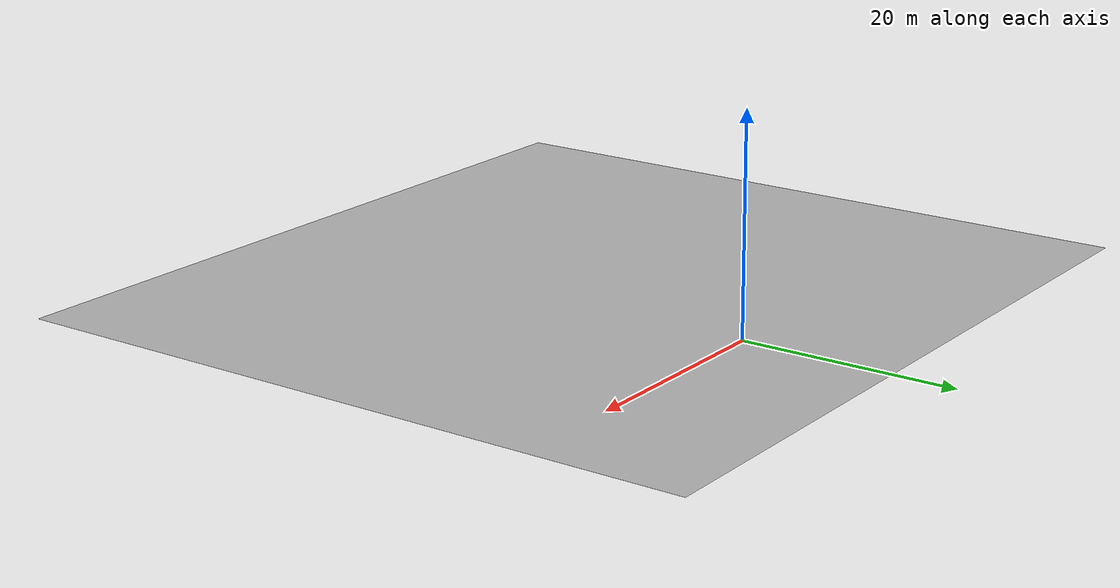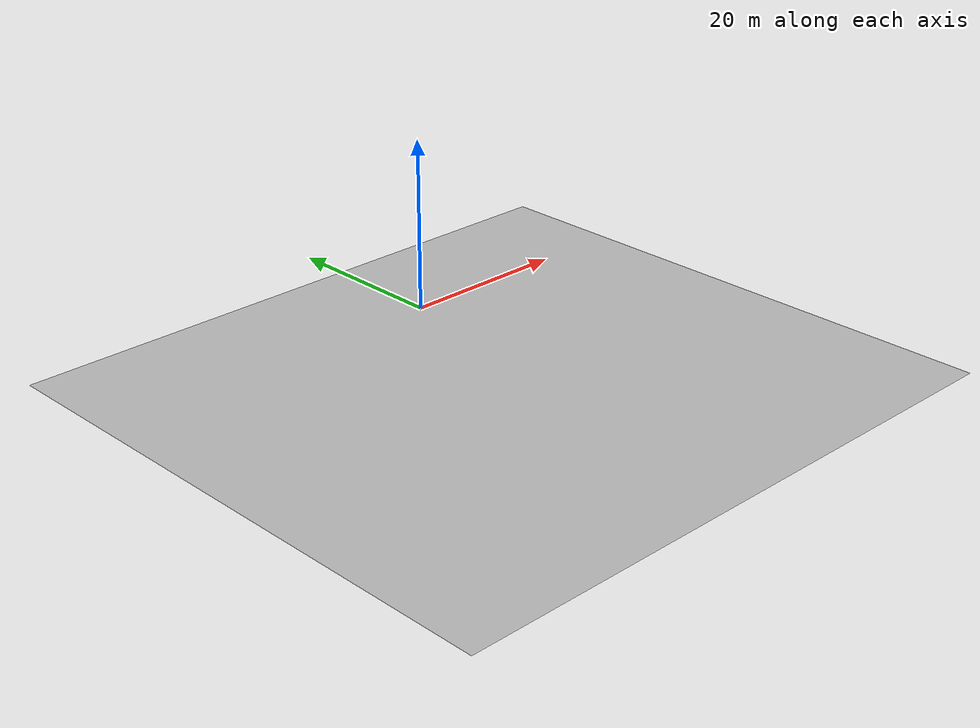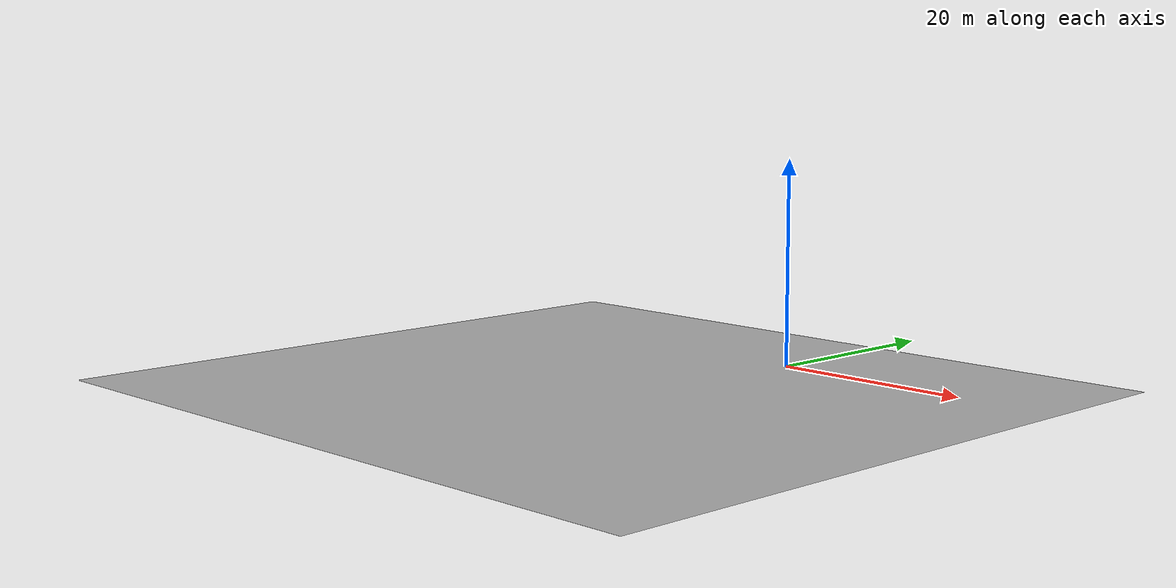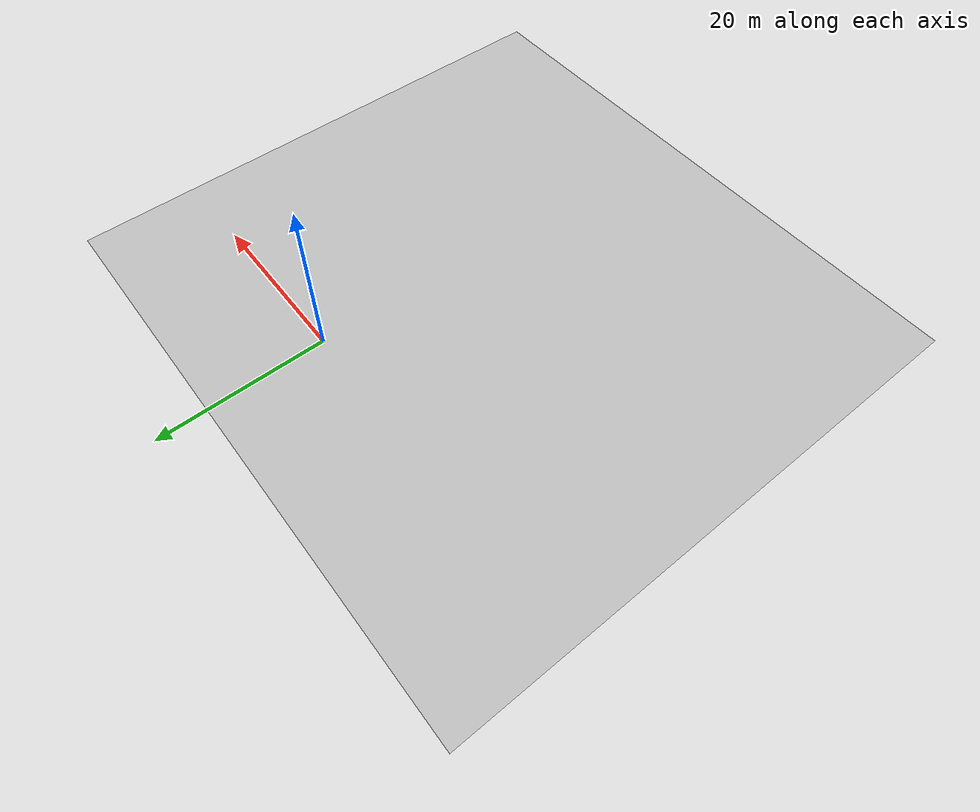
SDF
<?xml version="1.0"?>
<sdf version="1.9">
  <model name="igvc2027_course">
    <static>true</static>
    <link name="link">
      <collision name="ground">
        <geometry><plane><normal>0 0 1</normal><size>200 200</size></plane></geometry>
        <surface><friction><ode><mu>0.9</mu><mu2>0.9</mu2></ode></friction></surface>
      </collision>
      <visual name="surface">
        <cast_shadows>false</cast_shadows>
        <geometry><mesh><uri>model://igvc2027_course/meshes/course.obj</uri></mesh></geometry>
      </visual>
    </link>
  </model>
</sdf>
